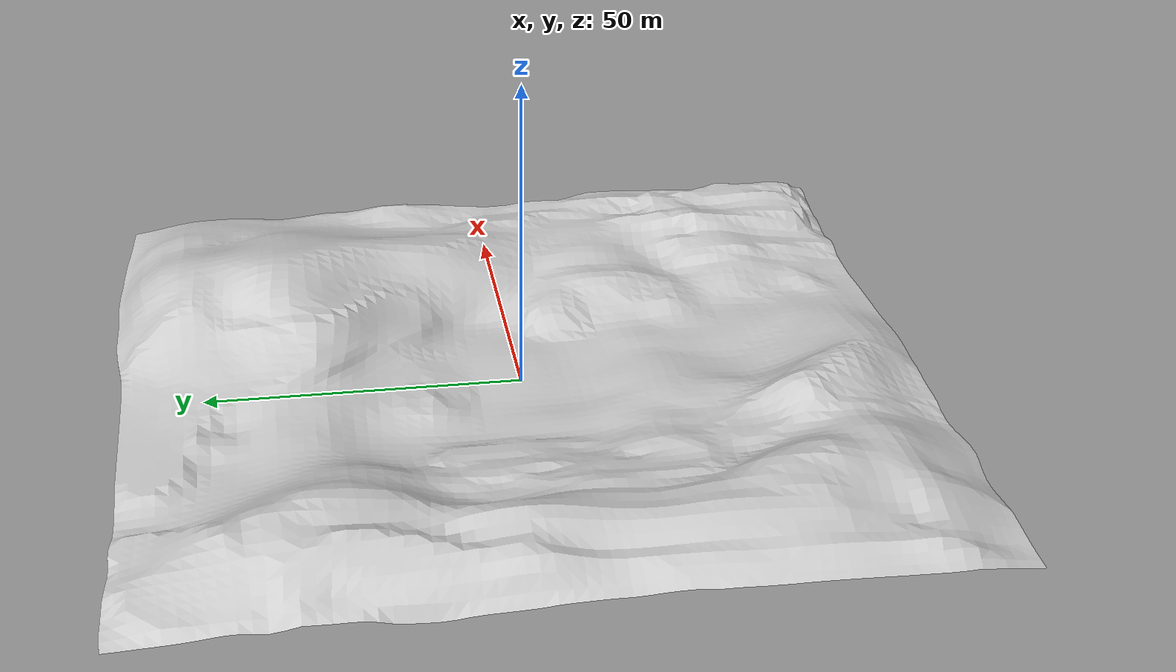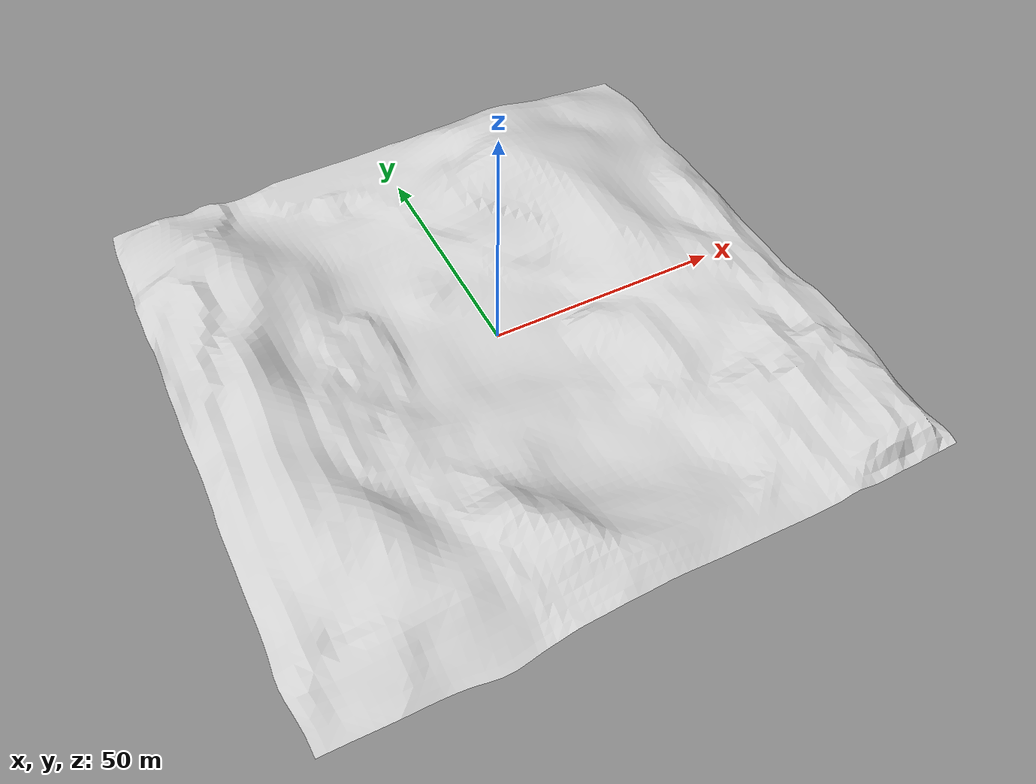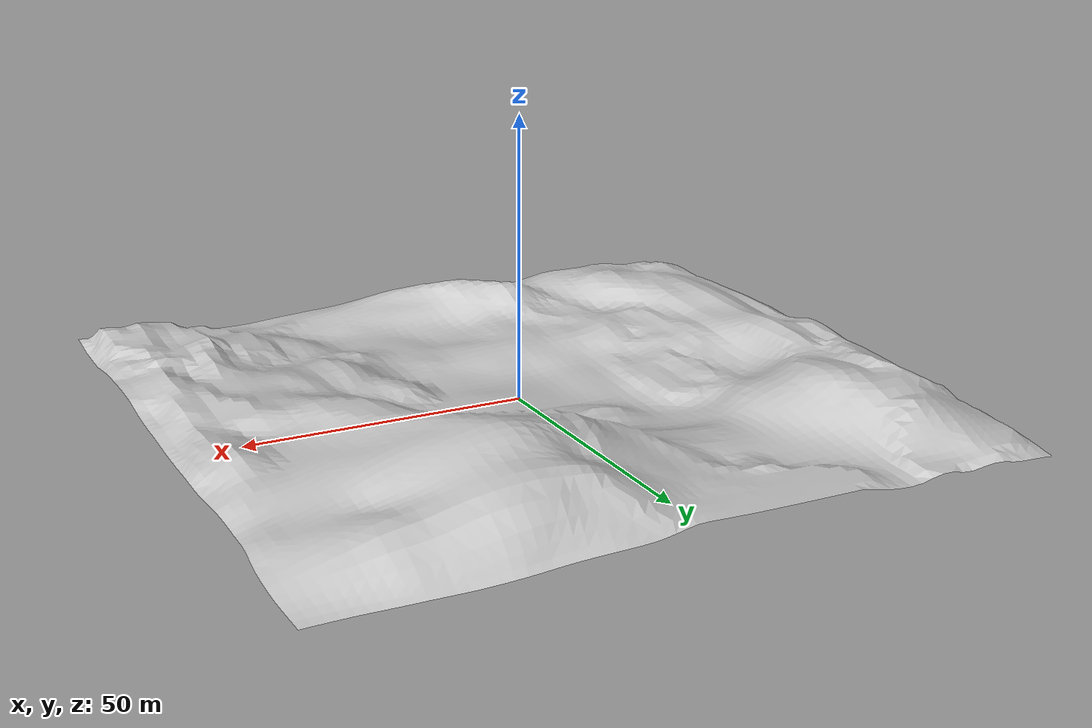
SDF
<?xml version="1.0" ?>
<sdf version="1.6">
  <model name="ground_mountain">
    <pose>0 0 0 0 0 0</pose>
    <static>true</static>
    <link name="link">
      <collision name="collision">
        <geometry>
          <mesh>
            <uri>model://ground_mountain/meshes/ground_mountain.dae</uri>
            <scale>2 2 2</scale>
          </mesh>
        </geometry>
      </collision>

      <visual name='visual'>
        <cast_shadows>true</cast_shadows>
        <geometry>
          <mesh>
            <uri>model://ground_mountain/meshes/ground_mountain.dae</uri>
            <scale>2 2 2</scale>
          </mesh>
        </geometry>
        <material>
          <script>
            <uri>model://ground_mountain/materials/scripts</uri>
            <uri>model://ground_mountain/materials/textures</uri>
            <name>ground_mountain/ground_mountain</name>
          </script>
          <shader type='pixel'/>
          <emissive>0 0 0 1</emissive>
        </material>
      </visual>
    </link>
  </model>
</sdf>
